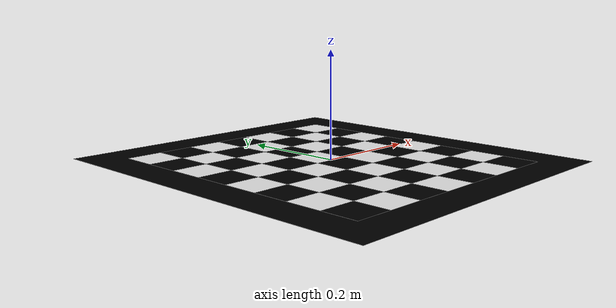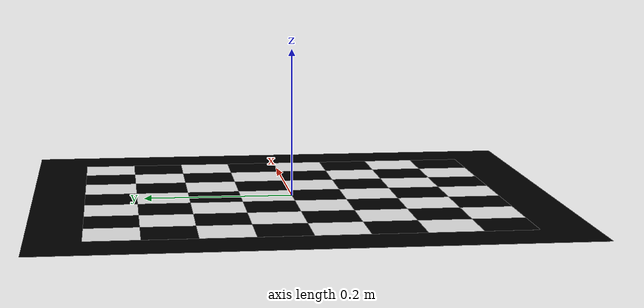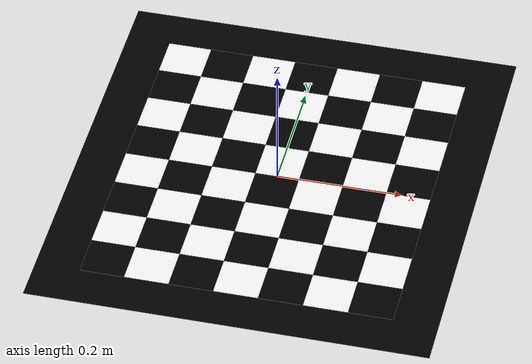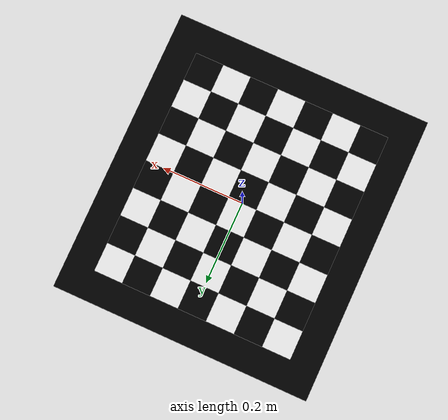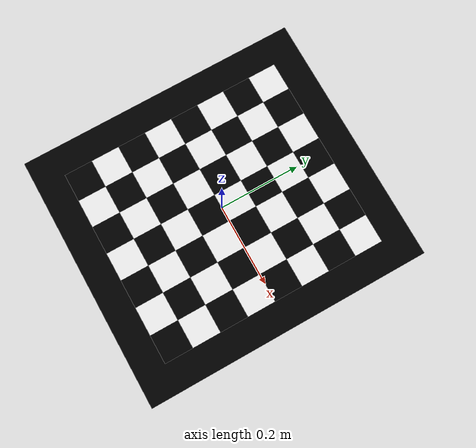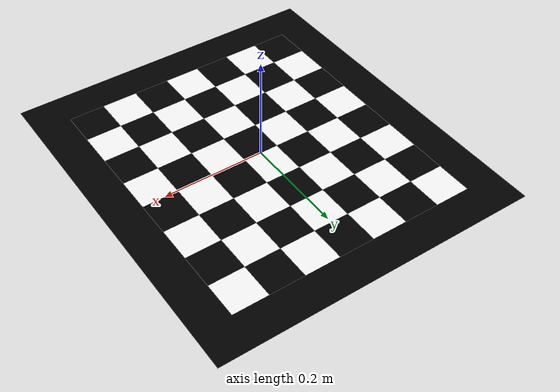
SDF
<?xml version="1.0"?>
<sdf version="1.4">
  <model name="checkerboard_7_8_0_07">
  <static>true</static>
  <link name="checkerboard_7_8_0_07_body">
      <visual name="checker_0_0">
        <pose>-0.21000000000000002 -0.24500000000000002 0 0 0 0</pose>
        <geometry>
          <box>
            <size>0.07 0.07 0.0002</size>
          </box>
        </geometry>
        <material>
          <ambient>0 0 0 1</ambient>
          <diffuse>0 0 0 1</diffuse>
          <specular>0.1 0.1 0.1 1</specular>
          <emissive>0 0 0 0</emissive>
        </material>
      </visual>
      <visual name="checker_0_1">
        <pose>-0.21000000000000002 -0.17500000000000002 0 0 0 0</pose>
        <geometry>
          <box>
            <size>0.07 0.07 0.0002</size>
          </box>
        </geometry>
        <material>
          <ambient>1 1 1 1</ambient>
          <diffuse>1 1 1 1</diffuse>
          <specular>0.1 0.1 0.1 1</specular>
          <emissive>0 0 0 0</emissive>
        </material>
      </visual>
      <visual name="checker_0_2">
        <pose>-0.21000000000000002 -0.10500000000000001 0 0 0 0</pose>
        <geometry>
          <box>
            <size>0.07 0.07 0.0002</size>
          </box>
        </geometry>
        <material>
          <ambient>0 0 0 1</ambient>
          <diffuse>0 0 0 1</diffuse>
          <specular>0.1 0.1 0.1 1</specular>
          <emissive>0 0 0 0</emissive>
        </material>
      </visual>
      <visual name="checker_0_3">
        <pose>-0.21000000000000002 -0.035 0 0 0 0</pose>
        <geometry>
          <box>
            <size>0.07 0.07 0.0002</size>
          </box>
        </geometry>
        <material>
          <ambient>1 1 1 1</ambient>
          <diffuse>1 1 1 1</diffuse>
          <specular>0.1 0.1 0.1 1</specular>
          <emissive>0 0 0 0</emissive>
        </material>
      </visual>
      <visual name="checker_0_4">
        <pose>-0.21000000000000002 0.03500000000000003 0 0 0 0</pose>
        <geometry>
          <box>
            <size>0.07 0.07 0.0002</size>
          </box>
        </geometry>
        <material>
          <ambient>0 0 0 1</ambient>
          <diffuse>0 0 0 1</diffuse>
          <specular>0.1 0.1 0.1 1</specular>
          <emissive>0 0 0 0</emissive>
        </material>
      </visual>
      <visual name="checker_0_5">
        <pose>-0.21000000000000002 0.10499999999999998 0 0 0 0</pose>
        <geometry>
          <box>
            <size>0.07 0.07 0.0002</size>
          </box>
        </geometry>
        <material>
          <ambient>1 1 1 1</ambient>
          <diffuse>1 1 1 1</diffuse>
          <specular>0.1 0.1 0.1 1</specular>
          <emissive>0 0 0 0</emissive>
        </material>
      </visual>
      <visual name="checker_0_6">
        <pose>-0.21000000000000002 0.17500000000000004 0 0 0 0</pose>
        <geometry>
          <box>
            <size>0.07 0.07 0.0002</size>
          </box>
        </geometry>
        <material>
          <ambient>0 0 0 1</ambient>
          <diffuse>0 0 0 1</diffuse>
          <specular>0.1 0.1 0.1 1</specular>
          <emissive>0 0 0 0</emissive>
        </material>
      </visual>
      <visual name="checker_0_7">
        <pose>-0.21000000000000002 0.245 0 0 0 0</pose>
        <geometry>
          <box>
            <size>0.07 0.07 0.0002</size>
          </box>
        </geometry>
        <material>
          <ambient>1 1 1 1</ambient>
          <diffuse>1 1 1 1</diffuse>
          <specular>0.1 0.1 0.1 1</specular>
          <emissive>0 0 0 0</emissive>
        </material>
      </visual>
      <visual name="checker_1_0">
        <pose>-0.14 -0.24500000000000002 0 0 0 0</pose>
        <geometry>
          <box>
            <size>0.07 0.07 0.0002</size>
          </box>
        </geometry>
        <material>
          <ambient>1 1 1 1</ambient>
          <diffuse>1 1 1 1</diffuse>
          <specular>0.1 0.1 0.1 1</specular>
          <emissive>0 0 0 0</emissive>
        </material>
      </visual>
      <visual name="checker_1_1">
        <pose>-0.14 -0.17500000000000002 0 0 0 0</pose>
        <geometry>
          <box>
            <size>0.07 0.07 0.0002</size>
          </box>
        </geometry>
        <material>
          <ambient>0 0 0 1</ambient>
          <diffuse>0 0 0 1</diffuse>
          <specular>0.1 0.1 0.1 1</specular>
          <emissive>0 0 0 0</emissive>
        </material>
      </visual>
      <visual name="checker_1_2">
        <pose>-0.14 -0.10500000000000001 0 0 0 0</pose>
        <geometry>
          <box>
            <size>0.07 0.07 0.0002</size>
          </box>
        </geometry>
        <material>
          <ambient>1 1 1 1</ambient>
          <diffuse>1 1 1 1</diffuse>
          <specular>0.1 0.1 0.1 1</specular>
          <emissive>0 0 0 0</emissive>
        </material>
      </visual>
      <visual name="checker_1_3">
        <pose>-0.14 -0.035 0 0 0 0</pose>
        <geometry>
          <box>
            <size>0.07 0.07 0.0002</size>
          </box>
        </geometry>
        <material>
          <ambient>0 0 0 1</ambient>
          <diffuse>0 0 0 1</diffuse>
          <specular>0.1 0.1 0.1 1</specular>
          <emissive>0 0 0 0</emissive>
        </material>
      </visual>
      <visual name="checker_1_4">
        <pose>-0.14 0.03500000000000003 0 0 0 0</pose>
        <geometry>
          <box>
            <size>0.07 0.07 0.0002</size>
          </box>
        </geometry>
        <material>
          <ambient>1 1 1 1</ambient>
          <diffuse>1 1 1 1</diffuse>
          <specular>0.1 0.1 0.1 1</specular>
          <emissive>0 0 0 0</emissive>
        </material>
      </visual>
      <visual name="checker_1_5">
        <pose>-0.14 0.10499999999999998 0 0 0 0</pose>
        <geometry>
          <box>
            <size>0.07 0.07 0.0002</size>
          </box>
        </geometry>
        <material>
          <ambient>0 0 0 1</ambient>
          <diffuse>0 0 0 1</diffuse>
          <specular>0.1 0.1 0.1 1</specular>
          <emissive>0 0 0 0</emissive>
        </material>
      </visual>
      <visual name="checker_1_6">
        <pose>-0.14 0.17500000000000004 0 0 0 0</pose>
        <geometry>
          <box>
            <size>0.07 0.07 0.0002</size>
          </box>
        </geometry>
        <material>
          <ambient>1 1 1 1</ambient>
          <diffuse>1 1 1 1</diffuse>
          <specular>0.1 0.1 0.1 1</specular>
          <emissive>0 0 0 0</emissive>
        </material>
      </visual>
      <visual name="checker_1_7">
        <pose>-0.14 0.245 0 0 0 0</pose>
        <geometry>
          <box>
            <size>0.07 0.07 0.0002</size>
          </box>
        </geometry>
        <material>
          <ambient>0 0 0 1</ambient>
          <diffuse>0 0 0 1</diffuse>
          <specular>0.1 0.1 0.1 1</specular>
          <emissive>0 0 0 0</emissive>
        </material>
      </visual>
      <visual name="checker_2_0">
        <pose>-0.07 -0.24500000000000002 0 0 0 0</pose>
        <geometry>
          <box>
            <size>0.07 0.07 0.0002</size>
          </box>
        </geometry>
        <material>
          <ambient>0 0 0 1</ambient>
          <diffuse>0 0 0 1</diffuse>
          <specular>0.1 0.1 0.1 1</specular>
          <emissive>0 0 0 0</emissive>
        </material>
      </visual>
      <visual name="checker_2_1">
        <pose>-0.07 -0.17500000000000002 0 0 0 0</pose>
        <geometry>
          <box>
            <size>0.07 0.07 0.0002</size>
          </box>
        </geometry>
        <material>
          <ambient>1 1 1 1</ambient>
          <diffuse>1 1 1 1</diffuse>
          <specular>0.1 0.1 0.1 1</specular>
          <emissive>0 0 0 0</emissive>
        </material>
      </visual>
      <visual name="checker_2_2">
        <pose>-0.07 -0.10500000000000001 0 0 0 0</pose>
        <geometry>
          <box>
            <size>0.07 0.07 0.0002</size>
          </box>
        </geometry>
        <material>
          <ambient>0 0 0 1</ambient>
          <diffuse>0 0 0 1</diffuse>
          <specular>0.1 0.1 0.1 1</specular>
          <emissive>0 0 0 0</emissive>
        </material>
      </visual>
      <visual name="checker_2_3">
        <pose>-0.07 -0.035 0 0 0 0</pose>
        <geometry>
          <box>
            <size>0.07 0.07 0.0002</size>
          </box>
        </geometry>
        <material>
          <ambient>1 1 1 1</ambient>
          <diffuse>1 1 1 1</diffuse>
          <specular>0.1 0.1 0.1 1</specular>
          <emissive>0 0 0 0</emissive>
        </material>
      </visual>
      <visual name="checker_2_4">
        <pose>-0.07 0.03500000000000003 0 0 0 0</pose>
        <geometry>
          <box>
            <size>0.07 0.07 0.0002</size>
          </box>
        </geometry>
        <material>
          <ambient>0 0 0 1</ambient>
          <diffuse>0 0 0 1</diffuse>
          <specular>0.1 0.1 0.1 1</specular>
          <emissive>0 0 0 0</emissive>
        </material>
      </visual>
      <visual name="checker_2_5">
        <pose>-0.07 0.10499999999999998 0 0 0 0</pose>
        <geometry>
          <box>
            <size>0.07 0.07 0.0002</size>
          </box>
        </geometry>
        <material>
          <ambient>1 1 1 1</ambient>
          <diffuse>1 1 1 1</diffuse>
          <specular>0.1 0.1 0.1 1</specular>
          <emissive>0 0 0 0</emissive>
        </material>
      </visual>
      <visual name="checker_2_6">
        <pose>-0.07 0.17500000000000004 0 0 0 0</pose>
        <geometry>
          <box>
            <size>0.07 0.07 0.0002</size>
          </box>
        </geometry>
        <material>
          <ambient>0 0 0 1</ambient>
          <diffuse>0 0 0 1</diffuse>
          <specular>0.1 0.1 0.1 1</specular>
          <emissive>0 0 0 0</emissive>
        </material>
      </visual>
      <visual name="checker_2_7">
        <pose>-0.07 0.245 0 0 0 0</pose>
        <geometry>
          <box>
            <size>0.07 0.07 0.0002</size>
          </box>
        </geometry>
        <material>
          <ambient>1 1 1 1</ambient>
          <diffuse>1 1 1 1</diffuse>
          <specular>0.1 0.1 0.1 1</specular>
          <emissive>0 0 0 0</emissive>
        </material>
      </visual>
      <visual name="checker_3_0">
        <pose>0.0 -0.24500000000000002 0 0 0 0</pose>
        <geometry>
          <box>
            <size>0.07 0.07 0.0002</size>
          </box>
        </geometry>
        <material>
          <ambient>1 1 1 1</ambient>
          <diffuse>1 1 1 1</diffuse>
          <specular>0.1 0.1 0.1 1</specular>
          <emissive>0 0 0 0</emissive>
        </material>
      </visual>
      <visual name="checker_3_1">
        <pose>0.0 -0.17500000000000002 0 0 0 0</pose>
        <geometry>
          <box>
            <size>0.07 0.07 0.0002</size>
          </box>
        </geometry>
        <material>
          <ambient>0 0 0 1</ambient>
          <diffuse>0 0 0 1</diffuse>
          <specular>0.1 0.1 0.1 1</specular>
          <emissive>0 0 0 0</emissive>
        </material>
      </visual>
      <visual name="checker_3_2">
        <pose>0.0 -0.10500000000000001 0 0 0 0</pose>
        <geometry>
          <box>
            <size>0.07 0.07 0.0002</size>
          </box>
        </geometry>
        <material>
          <ambient>1 1 1 1</ambient>
          <diffuse>1 1 1 1</diffuse>
          <specular>0.1 0.1 0.1 1</specular>
          <emissive>0 0 0 0</emissive>
        </material>
      </visual>
      <visual name="checker_3_3">
        <pose>0.0 -0.035 0 0 0 0</pose>
        <geometry>
          <box>
            <size>0.07 0.07 0.0002</size>
          </box>
        </geometry>
        <material>
          <ambient>0 0 0 1</ambient>
          <diffuse>0 0 0 1</diffuse>
          <specular>0.1 0.1 0.1 1</specular>
          <emissive>0 0 0 0</emissive>
        </material>
      </visual>
      <visual name="checker_3_4">
        <pose>0.0 0.03500000000000003 0 0 0 0</pose>
        <geometry>
          <box>
            <size>0.07 0.07 0.0002</size>
          </box>
        </geometry>
        <material>
          <ambient>1 1 1 1</ambient>
          <diffuse>1 1 1 1</diffuse>
          <specular>0.1 0.1 0.1 1</specular>
          <emissive>0 0 0 0</emissive>
        </material>
      </visual>
      <visual name="checker_3_5">
        <pose>0.0 0.10499999999999998 0 0 0 0</pose>
        <geometry>
          <box>
            <size>0.07 0.07 0.0002</size>
          </box>
        </geometry>
        <material>
          <ambient>0 0 0 1</ambient>
          <diffuse>0 0 0 1</diffuse>
          <specular>0.1 0.1 0.1 1</specular>
          <emissive>0 0 0 0</emissive>
        </material>
      </visual>
      <visual name="checker_3_6">
        <pose>0.0 0.17500000000000004 0 0 0 0</pose>
        <geometry>
          <box>
            <size>0.07 0.07 0.0002</size>
          </box>
        </geometry>
        <material>
          <ambient>1 1 1 1</ambient>
          <diffuse>1 1 1 1</diffuse>
          <specular>0.1 0.1 0.1 1</specular>
          <emissive>0 0 0 0</emissive>
        </material>
      </visual>
      <visual name="checker_3_7">
        <pose>0.0 0.245 0 0 0 0</pose>
        <geometry>
          <box>
            <size>0.07 0.07 0.0002</size>
          </box>
        </geometry>
        <material>
          <ambient>0 0 0 1</ambient>
          <diffuse>0 0 0 1</diffuse>
          <specular>0.1 0.1 0.1 1</specular>
          <emissive>0 0 0 0</emissive>
        </material>
      </visual>
      <visual name="checker_4_0">
        <pose>0.07000000000000003 -0.24500000000000002 0 0 0 0</pose>
        <geometry>
          <box>
            <size>0.07 0.07 0.0002</size>
          </box>
        </geometry>
        <material>
          <ambient>0 0 0 1</ambient>
          <diffuse>0 0 0 1</diffuse>
          <specular>0.1 0.1 0.1 1</specular>
          <emissive>0 0 0 0</emissive>
        </material>
      </visual>
      <visual name="checker_4_1">
        <pose>0.07000000000000003 -0.17500000000000002 0 0 0 0</pose>
        <geometry>
          <box>
            <size>0.07 0.07 0.0002</size>
          </box>
        </geometry>
        <material>
          <ambient>1 1 1 1</ambient>
          <diffuse>1 1 1 1</diffuse>
          <specular>0.1 0.1 0.1 1</specular>
          <emissive>0 0 0 0</emissive>
        </material>
      </visual>
      <visual name="checker_4_2">
        <pose>0.07000000000000003 -0.10500000000000001 0 0 0 0</pose>
        <geometry>
          <box>
            <size>0.07 0.07 0.0002</size>
          </box>
        </geometry>
        <material>
          <ambient>0 0 0 1</ambient>
          <diffuse>0 0 0 1</diffuse>
          <specular>0.1 0.1 0.1 1</specular>
          <emissive>0 0 0 0</emissive>
        </material>
      </visual>
      <visual name="checker_4_3">
        <pose>0.07000000000000003 -0.035 0 0 0 0</pose>
        <geometry>
          <box>
            <size>0.07 0.07 0.0002</size>
          </box>
        </geometry>
        <material>
          <ambient>1 1 1 1</ambient>
          <diffuse>1 1 1 1</diffuse>
          <specular>0.1 0.1 0.1 1</specular>
          <emissive>0 0 0 0</emissive>
        </material>
      </visual>
      <visual name="checker_4_4">
        <pose>0.07000000000000003 0.03500000000000003 0 0 0 0</pose>
        <geometry>
          <box>
            <size>0.07 0.07 0.0002</size>
          </box>
        </geometry>
        <material>
          <ambient>0 0 0 1</ambient>
          <diffuse>0 0 0 1</diffuse>
          <specular>0.1 0.1 0.1 1</specular>
          <emissive>0 0 0 0</emissive>
        </material>
      </visual>
      <visual name="checker_4_5">
        <pose>0.07000000000000003 0.10499999999999998 0 0 0 0</pose>
        <geometry>
          <box>
            <size>0.07 0.07 0.0002</size>
          </box>
        </geometry>
        <material>
          <ambient>1 1 1 1</ambient>
          <diffuse>1 1 1 1</diffuse>
          <specular>0.1 0.1 0.1 1</specular>
          <emissive>0 0 0 0</emissive>
        </material>
      </visual>
      <visual name="checker_4_6">
        <pose>0.07000000000000003 0.17500000000000004 0 0 0 0</pose>
        <geometry>
          <box>
            <size>0.07 0.07 0.0002</size>
          </box>
        </geometry>
        <material>
          <ambient>0 0 0 1</ambient>
          <diffuse>0 0 0 1</diffuse>
          <specular>0.1 0.1 0.1 1</specular>
          <emissive>0 0 0 0</emissive>
        </material>
      </visual>
      <visual name="checker_4_7">
        <pose>0.07000000000000003 0.245 0 0 0 0</pose>
        <geometry>
          <box>
            <size>0.07 0.07 0.0002</size>
          </box>
        </geometry>
        <material>
          <ambient>1 1 1 1</ambient>
          <diffuse>1 1 1 1</diffuse>
          <specular>0.1 0.1 0.1 1</specular>
          <emissive>0 0 0 0</emissive>
        </material>
      </visual>
      <visual name="checker_5_0">
        <pose>0.13999999999999999 -0.24500000000000002 0 0 0 0</pose>
        <geometry>
          <box>
            <size>0.07 0.07 0.0002</size>
          </box>
        </geometry>
        <material>
          <ambient>1 1 1 1</ambient>
          <diffuse>1 1 1 1</diffuse>
          <specular>0.1 0.1 0.1 1</specular>
          <emissive>0 0 0 0</emissive>
        </material>
      </visual>
      <visual name="checker_5_1">
        <pose>0.13999999999999999 -0.17500000000000002 0 0 0 0</pose>
        <geometry>
          <box>
            <size>0.07 0.07 0.0002</size>
          </box>
        </geometry>
        <material>
          <ambient>0 0 0 1</ambient>
          <diffuse>0 0 0 1</diffuse>
          <specular>0.1 0.1 0.1 1</specular>
          <emissive>0 0 0 0</emissive>
        </material>
      </visual>
      <visual name="checker_5_2">
        <pose>0.13999999999999999 -0.10500000000000001 0 0 0 0</pose>
        <geometry>
          <box>
            <size>0.07 0.07 0.0002</size>
          </box>
        </geometry>
        <material>
          <ambient>1 1 1 1</ambient>
          <diffuse>1 1 1 1</diffuse>
          <specular>0.1 0.1 0.1 1</specular>
          <emissive>0 0 0 0</emissive>
        </material>
      </visual>
      <visual name="checker_5_3">
        <pose>0.13999999999999999 -0.035 0 0 0 0</pose>
        <geometry>
          <box>
            <size>0.07 0.07 0.0002</size>
          </box>
        </geometry>
        <material>
          <ambient>0 0 0 1</ambient>
          <diffuse>0 0 0 1</diffuse>
          <specular>0.1 0.1 0.1 1</specular>
          <emissive>0 0 0 0</emissive>
        </material>
      </visual>
      <visual name="checker_5_4">
        <pose>0.13999999999999999 0.03500000000000003 0 0 0 0</pose>
        <geometry>
          <box>
            <size>0.07 0.07 0.0002</size>
          </box>
        </geometry>
        <material>
          <ambient>1 1 1 1</ambient>
          <diffuse>1 1 1 1</diffuse>
          <specular>0.1 0.1 0.1 1</specular>
          <emissive>0 0 0 0</emissive>
        </material>
      </visual>
      <visual name="checker_5_5">
        <pose>0.13999999999999999 0.10499999999999998 0 0 0 0</pose>
        <geometry>
          <box>
            <size>0.07 0.07 0.0002</size>
          </box>
        </geometry>
        <material>
          <ambient>0 0 0 1</ambient>
          <diffuse>0 0 0 1</diffuse>
          <specular>0.1 0.1 0.1 1</specular>
          <emissive>0 0 0 0</emissive>
        </material>
      </visual>
      <visual name="checker_5_6">
        <pose>0.13999999999999999 0.17500000000000004 0 0 0 0</pose>
        <geometry>
          <box>
            <size>0.07 0.07 0.0002</size>
          </box>
        </geometry>
        <material>
          <ambient>1 1 1 1</ambient>
          <diffuse>1 1 1 1</diffuse>
          <specular>0.1 0.1 0.1 1</specular>
          <emissive>0 0 0 0</emissive>
        </material>
      </visual>
      <visual name="checker_5_7">
        <pose>0.13999999999999999 0.245 0 0 0 0</pose>
        <geometry>
          <box>
            <size>0.07 0.07 0.0002</size>
          </box>
        </geometry>
        <material>
          <ambient>0 0 0 1</ambient>
          <diffuse>0 0 0 1</diffuse>
          <specular>0.1 0.1 0.1 1</specular>
          <emissive>0 0 0 0</emissive>
        </material>
      </visual>
      <visual name="checker_6_0">
        <pose>0.21000000000000005 -0.24500000000000002 0 0 0 0</pose>
        <geometry>
          <box>
            <size>0.07 0.07 0.0002</size>
          </box>
        </geometry>
        <material>
          <ambient>0 0 0 1</ambient>
          <diffuse>0 0 0 1</diffuse>
          <specular>0.1 0.1 0.1 1</specular>
          <emissive>0 0 0 0</emissive>
        </material>
      </visual>
      <visual name="checker_6_1">
        <pose>0.21000000000000005 -0.17500000000000002 0 0 0 0</pose>
        <geometry>
          <box>
            <size>0.07 0.07 0.0002</size>
          </box>
        </geometry>
        <material>
          <ambient>1 1 1 1</ambient>
          <diffuse>1 1 1 1</diffuse>
          <specular>0.1 0.1 0.1 1</specular>
          <emissive>0 0 0 0</emissive>
        </material>
      </visual>
      <visual name="checker_6_2">
        <pose>0.21000000000000005 -0.10500000000000001 0 0 0 0</pose>
        <geometry>
          <box>
            <size>0.07 0.07 0.0002</size>
          </box>
        </geometry>
        <material>
          <ambient>0 0 0 1</ambient>
          <diffuse>0 0 0 1</diffuse>
          <specular>0.1 0.1 0.1 1</specular>
          <emissive>0 0 0 0</emissive>
        </material>
      </visual>
      <visual name="checker_6_3">
        <pose>0.21000000000000005 -0.035 0 0 0 0</pose>
        <geometry>
          <box>
            <size>0.07 0.07 0.0002</size>
          </box>
        </geometry>
        <material>
          <ambient>1 1 1 1</ambient>
          <diffuse>1 1 1 1</diffuse>
          <specular>0.1 0.1 0.1 1</specular>
          <emissive>0 0 0 0</emissive>
        </material>
      </visual>
      <visual name="checker_6_4">
        <pose>0.21000000000000005 0.03500000000000003 0 0 0 0</pose>
        <geometry>
          <box>
            <size>0.07 0.07 0.0002</size>
          </box>
        </geometry>
        <material>
          <ambient>0 0 0 1</ambient>
          <diffuse>0 0 0 1</diffuse>
          <specular>0.1 0.1 0.1 1</specular>
          <emissive>0 0 0 0</emissive>
        </material>
      </visual>
      <visual name="checker_6_5">
        <pose>0.21000000000000005 0.10499999999999998 0 0 0 0</pose>
        <geometry>
          <box>
            <size>0.07 0.07 0.0002</size>
          </box>
        </geometry>
        <material>
          <ambient>1 1 1 1</ambient>
          <diffuse>1 1 1 1</diffuse>
          <specular>0.1 0.1 0.1 1</specular>
          <emissive>0 0 0 0</emissive>
        </material>
      </visual>
      <visual name="checker_6_6">
        <pose>0.21000000000000005 0.17500000000000004 0 0 0 0</pose>
        <geometry>
          <box>
            <size>0.07 0.07 0.0002</size>
          </box>
        </geometry>
        <material>
          <ambient>0 0 0 1</ambient>
          <diffuse>0 0 0 1</diffuse>
          <specular>0.1 0.1 0.1 1</specular>
          <emissive>0 0 0 0</emissive>
        </material>
      </visual>
      <visual name="checker_6_7">
        <pose>0.21000000000000005 0.245 0 0 0 0</pose>
        <geometry>
          <box>
            <size>0.07 0.07 0.0002</size>
          </box>
        </geometry>
        <material>
          <ambient>1 1 1 1</ambient>
          <diffuse>1 1 1 1</diffuse>
          <specular>0.1 0.1 0.1 1</specular>
          <emissive>0 0 0 0</emissive>
        </material>
      </visual>
      <visual name="checker_backdrop">
        <pose>0 0 0 0 0 0</pose>
        <geometry>
          <box>
            <size>0.6300000000000001 0.7000000000000001 0.0001</size>
          </box>
        </geometry>
        <material>
          <ambient>1 1 1 1</ambient>
          <diffuse>0 0 0 0</diffuse>
          <specular>0.1 0.1 0.1 1</specular>
          <emissive>0 0 0 0</emissive>
        </material>
      </visual>
    </link>
  </model>
</sdf>
